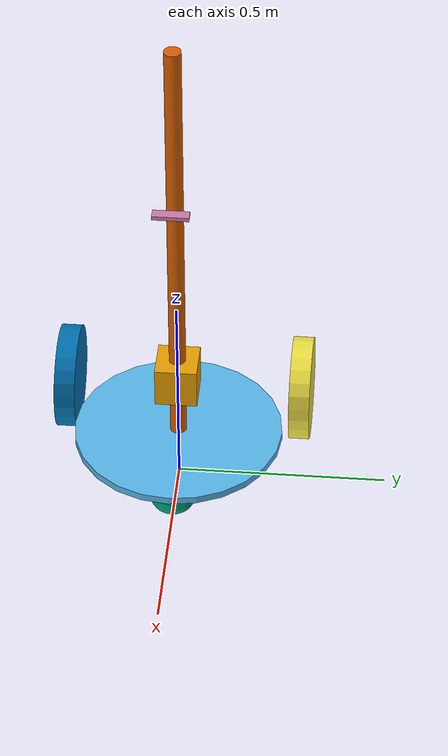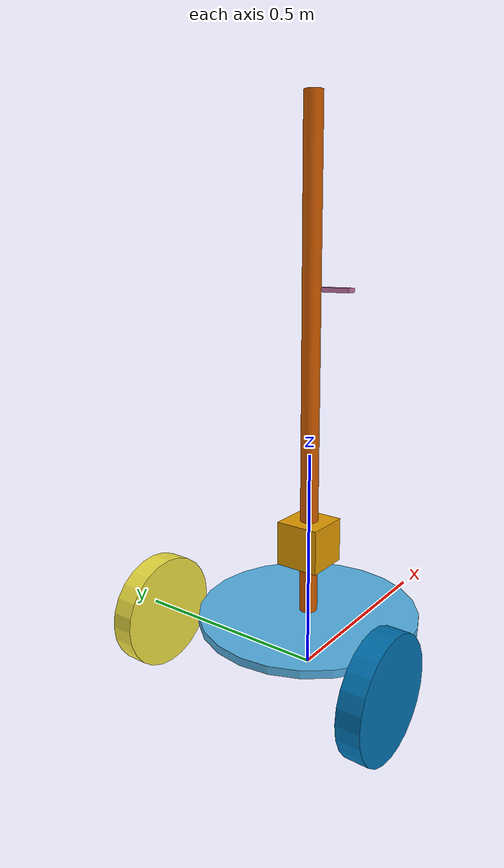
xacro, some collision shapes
<?xml version="1.0"?>

<robot name="gara" xmlns:xacro="http://www.ros.org/wiki/xacro">

	<xacro:include filename="$(find gara_simulation)/urdf/macros.xacro" />

	<xacro:include filename="$(find gara_simulation)/urdf/gara.gazebo" />

	<xacro:include filename="$(find gara_simulation)/urdf/gara_dimensions.xacro" />

	<!-- Base Link -->
	<link name="base_link"></link>

	<!--Robot chassis Link 	-->
	<link name="chassis">

  		<visual>
			<origin xyz="0 0 ${wheelRadius}" rpy="0 0 0" />
			<geometry>
		  	<cylinder length="${chassisWidth}" radius="${chassisRadius}"/>
			</geometry>
  		</visual>

		<collision>
			<origin xyz="0 0 ${wheelRadius}" rpy="0 0 0" />
  			<geometry>
    			<cylinder length="${chassisWidth}" radius="${chassisRadius}"/>
  			</geometry>
		</collision>

		<inertial>
			<origin xyz="0 0 ${wheelRadius}" rpy="0 0 0" />
  			<mass value="${chassisMass}"/>
			<xacro:cylinder_inertia
				m="${chassisMass}"
				r="${chassisRadius}"
				h="${chassisWidth}"/>
		</inertial>

	</link>

	<!--Robot chassis Joint -->
  	<joint name="base_link_joint" type="fixed">

		<origin xyz="0 0 0" rpy="0 0 0" />
    	<parent link="base_link"/>
    	<child link="chassis" />

  	</joint>

	<!--Caster Link -->
	<link name="center_wheel">

		<visual>
				<origin xyz="0 0 0" rpy="0 0 0"/>
				<geometry>
					<sphere radius="${casterRadius}"/>
				</geometry>
		</visual>

		<collision>
 			<geometry>
    			<sphere radius="${casterRadius}"/>
 			</geometry>
		</collision>

		<inertial>
			<origin xyz="0.0 0 ${casterMass/2.0}" rpy="0 0 0"/>
 			<mass value="${casterMass}"/>
			<xacro:sphere_inertia
				m="${casterMass}"
				r="${casterRadius}"/>
		</inertial>

	</link>

	<!--Caster Joint -->
	<joint name="center_wheel_joint" type="fixed">

		<origin xyz="0.14 0 ${casterRadius}" rpy="0 0 0"/>
		<parent link="chassis"/>
		<child link="center_wheel"/>

	</joint>

	<!-- Left Wheel Link  	-->
	<link name='left_wheel'>

		<visual>
			<origin xyz="0.0 0 0" rpy="0 1.5707 1.5707"/>
			<geometry>
				<cylinder radius="${wheelRadius}" length="${wheelWidth}"/>
			</geometry>
		</visual>

		<collision name='collision'>
			<origin xyz="0.0 0 0" rpy="0 1.5707 1.5707"/>
			<geometry>
				<cylinder radius="${wheelRadius}" length="${wheelWidth}"/>
			</geometry>
		</collision>

		<inertial>
			<origin xyz="0.0 0 0" rpy="0 1.5707 1.5707"/>
			<mass value="${wheelMass}"/>
			<xacro:cylinder_inertia
				m="${wheelMass}"
				r="${wheelRadius}"
				h="${wheelWidth}"/>
		</inertial>

	</link>

	<!-- Left Wheel Joint -->
	<joint name="left_wheel_hinge" type="continuous">

		<axis xyz="0 1 0" rpy="0 0 0"/>
		<origin xyz="-0.182 0.285 ${wheelRadius}" rpy="0 0 0"/>
		<parent link="chassis"/>
		<child link="left_wheel"/>

		<limit effort="10000.0" velocity="10000.0"/>

	</joint>

	<!-- Right Wheel Link -->
	<link name='right_wheel'>

		<visual >
			<origin xyz="0.0 0 0" rpy="0 1.5707 1.5707"/>
			<geometry>
				<cylinder radius="${wheelRadius}" length="${wheelWidth}"/>
			</geometry>
		</visual>

		<collision name='collision'>
			<origin xyz="0.0 0 0" rpy="0 1.5707 1.5707"/>
			<geometry>
				<cylinder radius="${wheelRadius}" length="${wheelWidth}"/>
			</geometry>
		</collision>

		<inertial>
			<origin xyz="0.0 0 0" rpy="0 1.5707 1.5707"/>
			<mass value="${wheelMass}"/>
			<xacro:cylinder_inertia
				m="${wheelMass}"
				r="${wheelRadius}"
				h="${wheelWidth}"/>
		</inertial>

	</link>

	<!-- Right Wheel Joint -->
	<joint name="right_wheel_hinge" type="continuous" >

		<axis xyz="0 1 0" rpy="0 0 0"/>
		<origin xyz="-0.182 -0.285 ${wheelRadius}" rpy="0 0 0"/>
		<parent link="chassis"/>
		<child link="right_wheel"/>

		<limit effort="10000.0" velocity="10000.0"/>

	</joint>

	<!-- Mast Link -->
	<link name='mast'>

		<visual name='mast_visual'>
			<origin xyz="0.0 0 0.55" rpy="0 0 0"/>
			<geometry>
				<cylinder radius="0.02" length="1.1"/>
			</geometry>
		</visual>

		<collision name='collision'>
			<origin xyz="0.0 0 0.55" rpy="0 0 0"/>
			<geometry>
				<cylinder radius="0.02" length="1.1"/>
			</geometry>
		</collision>

		<inertial>
			<origin xyz="0.0 0 0.55" rpy="0 0 0"/>
			<mass value="${mastMass}"/>
			<xacro:cylinder_inertia
				m="${mastMass}"
				r="0.02"
				h="1.1"/>
		</inertial>

	</link>

	<!-- Mast Joint -->
	<joint name="mast_hinge" type="fixed" >

		<origin xyz="0 0 ${wheelRadius+0.009}" rpy="0 0 0"/>
		<parent link="chassis"/>
		<child link="mast"/>

	</joint>

	<!-- Camera Link -->
	<link name="camera_link">

		<visual>
  			<geometry>
					<box size="0.025 0.085 0.01"/>
  			</geometry>
		</visual>

		<collision>
  			<origin xyz="0 0 0" rpy="0 0 0"/>
  			<geometry>
				<box size="0.025 0.085 0.01"/>
  			</geometry>
		</collision>

		<inertial>
			<mass value="0.05" />
			<xacro:box_inertia
				m="0.05"
				x="0.025"
				y="0.085"
				z="0.01"/>
		</inertial>

	</link>

	<!-- Camera Joint -->
	<joint name="camera_joint" type="fixed">

		<origin xyz="0.09 0 0.85" rpy="0 0 0"/>
		<parent link="chassis"/>
		<child link="camera_link"/>

	</joint>

	<!-- Camera RGBD Link -->
	<link name='camera_rgbd_frame'></link>

	<!-- Camera RGBD Joint -->
	<joint name="camera_rgbd_joint" type="fixed" >

		<origin xyz="0 0 0" rpy="-1.5707963267948966 0 -1.5707963267948966"/>
  		<parent link="camera_link"/>
    	<child link="camera_rgbd_frame"/>

  	</joint>

	<!-- Hokuyo Laser Link -->
	<link name="hokuyo_link">

  		<visual>
    			<origin xyz="0 0 0" rpy="0 0 0"/>
    			<geometry>
      			<mesh filename="package://gara_simulation/meshes/hokuyo.dae"/>
    			</geometry>
  		</visual>

  		<collision>
    			<geometry>
      			<box size="0.1 0.1 0.1"/>
    			</geometry>
  		</collision>

  		<inertial>
		  	<mass value="0.05" />
			<xacro:box_inertia
				m="0.05"
				x="0.1"
				y="0.1"
				z="0.1"/>
  		</inertial>

	</link>

 	<!-- Hokuyo Laser Joint -->
	<joint name="hokuyo_joint" type="fixed">

    	<axis xyz="0 1 0" />
  		<origin xyz="0 0 0.3" rpy="0 0 0"/>
  		<parent link="chassis"/>
  		<child link="hokuyo_link"/>

  	</joint>

	<!-- Hokuyo Laser Link -->
	<link name="imu_link">

		<visual>
			<geometry>
				<box size="0.01 0.01 0.01"/>
			</geometry>
		</visual>

		<collision>
  			<geometry>
    			<box size="0.01 0.01 0.01"/>
  			</geometry>
		</collision>

		<inertial>
		  	<mass value="0.05" />
			<xacro:box_inertia
				m="0.05"
				x="0.01"
				y="0.01"
				z="0.01"/>
		</inertial>

	</link>

 	<!-- IMU Joint -->
	<joint name="imu_joint" type="fixed">

		<origin xyz="-0.2 0 ${wheelRadius}" rpy="0 0 0"/>
		<parent link="chassis"/>
		<child link="imu_link"/>

  	</joint>

</robot>

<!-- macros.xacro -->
<robot xmlns:xacro="http://www.ros.org/wiki/xacro">

  <xacro:macro name="cylinder_inertia" params="m r h">

    <inertia
          ixx="${(m/12)*(3*r*r+h*h)}"
    			ixy = "0"
    			ixz = "0"
    			iyy="${(m/12)*(3*r*r+h*h)}"
    			iyz = "0"
    			izz="${(m/2)*(r*r)}"/>

  </xacro:macro>

  <xacro:macro name="box_inertia" params="m x y z">

    <inertia
          ixx="${m*(y*y+z*z)/12}"
    			ixy = "0"
    			ixz = "0"
    			iyy="${m*(x*x+z*z)/12}"
    			iyz = "0"
    			izz="${m*(x*x+z*z)/12}"/>

  </xacro:macro>

  <xacro:macro name="sphere_inertia" params="m r">

    <inertia
          ixx="${2*m*r*r/5}"
    			ixy = "0"
    			ixz = "0"
    			iyy="${2*m*r*r/5}"
    			iyz = "0"
    			izz="${2*m*r*r/5}"/>

  </xacro:macro>

</robot>

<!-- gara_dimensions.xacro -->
<robot xmlns:xacro="http://www.ros.org/wiki/xacro">

	<!-- Constants -->
	<xacro:property name="PI" value="3.1415926535897931"/>

	<!-- Robot Chassis properties -->
	<xacro:property name="chassisWidth" value="0.018"/>
	<xacro:property name="chassisRadius" value="0.25"/>
	<xacro:property name="chassisMass" value="0.5"/>

	<!-- Robot Caster wheel properties -->
	<xacro:property name="casterRadius" value="0.058"/>
	<xacro:property name="casterMass" value="0.1"/>
	<xacro:property name="casterOffsetX" value="0.091"/>

	<!-- Differential-drive wheels properties -->
	<xacro:property name="wheelWidth" value="0.05"/>
	<xacro:property name="wheelRadius" value="0.125"/>
	<xacro:property name="wheelMass" value="0.1"/>
	<xacro:property name="wheelOffsetY" value="0.037"/>

	<!-- Differential-drive wheels properties -->
	<xacro:property name="mastMass" value="0.1"/>

</robot>
